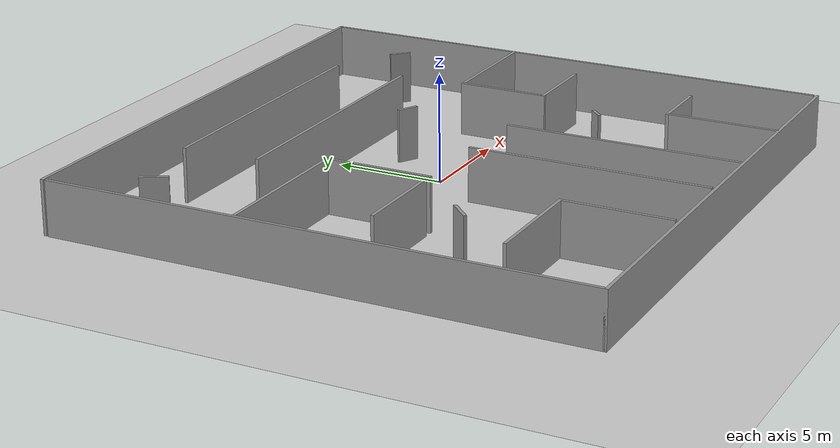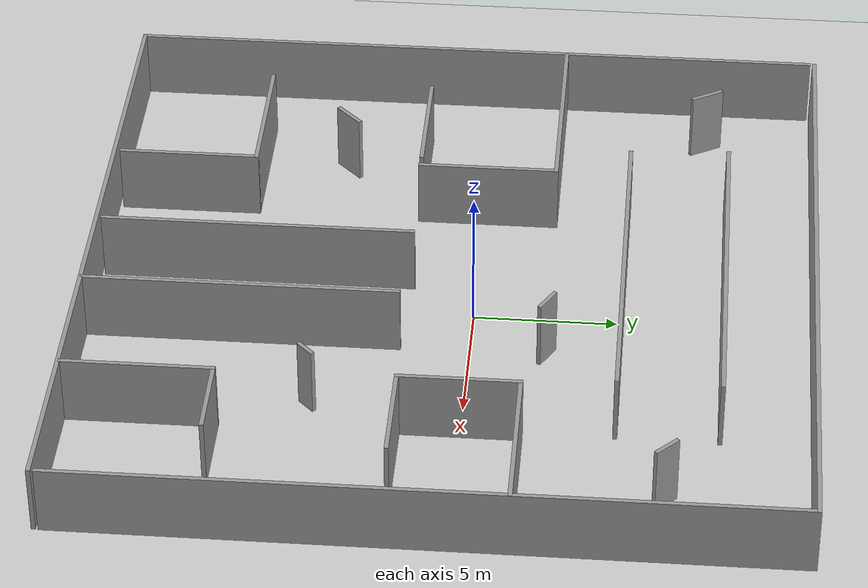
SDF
<sdf version="1.7">
 <world name="default">
  <light name="sun" type="directional">
   <pose>0 0 10 0 -0 0</pose>
   <diffuse>0.8 0.8 0.8 1</diffuse>
   <specular>0.2 0.2 0.2 1</specular>
   <attenuation>
    <range>1000</range>
    <constant>0.9</constant>
    <linear>0.01</linear>
    <quadratic>0.001</quadratic>
   </attenuation>
   <direction>-0.5 0.1 -0.9</direction>
   <spot><inner_angle>0</inner_angle><outer_angle>0</outer_angle><falloff>0</falloff></spot>
  </light>
  <model name="ground_plane">
   <static>1</static>
   <link name="link">
    <collision name="collision">
     <geometry><plane><normal>0 0 1</normal><size>100 100</size></plane></geometry>
     <surface>
      <contact><collide_bitmask>65535</collide_bitmask></contact>
      <friction><ode><mu>100</mu><mu2>50</mu2></ode></friction>
     </surface>
    </collision>
    <visual name="visual">
     <cast_shadows>0</cast_shadows>
     <geometry><plane><normal>0 0 1</normal><size>100 100</size></plane></geometry>
     <material>
      <script><uri>file://media/materials/scripts/gazebo.material</uri><name>Gazebo/Grey</name></script>
     </material>
    </visual>
   </link>
  </model>
  <gravity>0 0 -9.8</gravity>
  <magnetic_field>6e-06 2.3e-05 -4.2e-05</magnetic_field>
  <atmosphere type="adiabatic"/>
  <physics type="ode">
   <max_step_size>0.001</max_step_size>
   <real_time_factor>1</real_time_factor>
   <real_time_update_rate>1000</real_time_update_rate>
  </physics>
  <scene><ambient>0.4 0.4 0.4 1</ambient><background>0.7 0.7 0.7 1</background><shadows>1</shadows></scene>
  <spherical_coordinates>
   <surface_model>EARTH_WGS84</surface_model>
   <latitude_deg>0</latitude_deg>
   <longitude_deg>0</longitude_deg>
   <elevation>0</elevation>
   <heading_deg>0</heading_deg>
  </spherical_coordinates>
  <model name="offcice">
   <pose>-0.466959 -0.799808 0 0 -0 0</pose>
   <link name="Wall_10">
    <collision name="Wall_10_Collision">
     <geometry><box><size>25 0.15 2.5</size></box></geometry>
     <pose>0 0 1.25 0 -0 0</pose>
    </collision>
    <visual name="Wall_10_Visual">
     <pose>0 0 1.25 0 -0 0</pose>
     <geometry><box><size>25 0.15 2.5</size></box></geometry>
     <material>
      <script><uri>file://media/materials/scripts/gazebo.material</uri><name>Gazebo/Grey</name></script>
      <ambient>1 1 1 1</ambient>
     </material>
     <meta><layer>0</layer></meta>
    </visual>
    <pose>-0.011041 -12.5382 0 0 -0 0</pose>
   </link>
   <link name="Wall_13">
    <collision name="Wall_13_Collision">
     <geometry><box><size>13.25 0.15 2.5</size></box></geometry>
     <pose>0 0 1.25 0 -0 0</pose>
    </collision>
    <visual name="Wall_13_Visual">
     <pose>0 0 1.25 0 -0 0</pose>
     <geometry><box><size>13.25 0.15 2.5</size></box></geometry>
     <material>
      <script><uri>file://media/materials/scripts/gazebo.material</uri><name>Gazebo/Grey</name></script>
      <ambient>1 1 1 1</ambient>
     </material>
     <meta><layer>0</layer></meta>
    </visual>
    <pose>-0.017782 9.44155 0 0 -0 0</pose>
   </link>
   <link name="Wall_17">
    <collision name="Wall_17_Collision">
     <geometry><box><size>5.25 0.15 2.5</size></box></geometry>
     <pose>0 0 1.25 0 -0 0</pose>
    </collision>
    <visual name="Wall_17_Visual">
     <pose>0 0 1.25 0 -0 0</pose>
     <geometry><box><size>5.25 0.15 2.5</size></box></geometry>
     <material>
      <script><uri>file://media/materials/scripts/gazebo.material</uri><name>Gazebo/Grey</name></script>
      <ambient>1 1 1 1</ambient>
     </material>
     <meta><layer>0</layer></meta>
    </visual>
    <pose>6.92028 -9.9015 0 0 -0 -1.5708</pose>
   </link>
   <link name="Wall_19">
    <collision name="Wall_19_Collision">
     <geometry><box><size>3 0.15 2.5</size></box></geometry>
     <pose>0 0 1.25 0 -0 0</pose>
    </collision>
    <visual name="Wall_19_Visual">
     <pose>0 0 1.25 0 -0 0</pose>
     <geometry><box><size>3 0.15 2.5</size></box></geometry>
     <material>
      <script><uri>file://media/materials/scripts/gazebo.material</uri><name>Gazebo/Grey</name></script>
      <ambient>1 1 1 1</ambient>
     </material>
     <meta><layer>0</layer></meta>
    </visual>
    <pose>8.34528 -7.3515 0 0 -0 0</pose>
   </link>
   <link name="Wall_21">
    <collision name="Wall_21_Collision">
     <geometry><box><size>4.25 0.15 2.5</size></box></geometry>
     <pose>0 0 1.25 0 -0 0</pose>
    </collision>
    <visual name="Wall_21_Visual">
     <pose>0 0 1.25 0 -0 0</pose>
     <geometry><box><size>5.25 0.15 2.5</size></box></geometry>
     <material>
      <script><uri>file://media/materials/scripts/gazebo.material</uri><name>Gazebo/Grey</name></script>
      <ambient>1 1 1 1</ambient>
     </material>
     <meta><layer>0</layer></meta>
    </visual>
    <pose>-7.59807 -7.40747 0 0 -0 0</pose>
   </link>
   <link name="Wall_22">
    <collision name="Wall_22_Collision">
     <geometry><box><size>5 0.15 2.5</size></box></geometry>
     <pose>0 0 1.25 0 -0 0</pose>
    </collision>
    <visual name="Wall_22_Visual">
     <pose>0 0 1.25 0 -0 0</pose>
     <geometry><box><size>5 0.15 2.5</size></box></geometry>
     <material>
      <script><uri>file://media/materials/scripts/gazebo.material</uri><name>Gazebo/Grey</name></script>
      <ambient>1 1 1 1</ambient>
     </material>
     <meta><layer>0</layer></meta>
    </visual>
    <pose>-5.04807 -9.83247 0 0 -0 -1.5708</pose>
   </link>
   <link name="Wall_24">
    <collision name="Wall_24_Collision">
     <geometry><box><size>13 0.15 2.5</size></box></geometry>
     <pose>0 0 1.25 0 -0 0</pose>
    </collision>
    <visual name="Wall_24_Visual">
     <pose>0 0 1.25 0 -0 0</pose>
     <geometry><box><size>13 0.15 2.5</size></box></geometry>
     <material>
      <script><uri>file://media/materials/scripts/gazebo.material</uri><name>Gazebo/Grey</name></script>
      <ambient>1 1 1 1</ambient>
     </material>
     <meta><layer>0</layer></meta>
    </visual>
    <pose>0.078333 5.94792 0 0 -0 0</pose>
   </link>
   <link name="Wall_26">
    <collision name="Wall_26_Collision">
     <geometry><box><size>7.5 0.15 2.5</size></box></geometry>
     <pose>0 0 1.25 0 -0 0</pose>
    </collision>
    <visual name="Wall_26_Visual">
     <pose>0 0 1.25 0 -0 0</pose>
     <geometry><box><size>7.5 0.15 2.5</size></box></geometry>
     <material>
      <script><uri>file://media/materials/scripts/gazebo.material</uri><name>Gazebo/Grey</name></script>
      <ambient>1 1 1 1</ambient>
     </material>
     <meta><layer>0</layer></meta>
    </visual>
    <pose>-8.68602 3.33876 0 0 -0 0</pose>
   </link>
   <link name="Wall_27">
    <collision name="Wall_27_Collision">
     <geometry><box><size>5 0.15 2.5</size></box></geometry>
     <pose>0 0 1.25 0 -0 0</pose>
    </collision>
    <visual name="Wall_27_Visual">
     <pose>0 0 1.25 0 -0 0</pose>
     <geometry><box><size>5 0.15 2.5</size></box></geometry>
     <material>
      <script><uri>file://media/materials/scripts/gazebo.material</uri><name>Gazebo/Grey</name></script>
      <ambient>1 1 1 1</ambient>
     </material>
     <meta><layer>0</layer></meta>
    </visual>
    <pose>-5.01102 0.913757 0 0 -0 -1.5708</pose>
   </link>
   <link name="Wall_28">
    <collision name="Wall_28_Collision">
     <geometry><box><size>4.5 0.15 2.5</size></box></geometry>
     <pose>0 0 1.25 0 -0 0</pose>
    </collision>
    <visual name="Wall_28_Visual">
     <pose>0 0 1.25 0 -0 0</pose>
     <geometry><box><size>4.5 0.15 2.5</size></box></geometry>
     <material>
      <script><uri>file://media/materials/scripts/gazebo.material</uri><name>Gazebo/Grey</name></script>
      <ambient>1 1 1 1</ambient>
     </material>
     <meta><layer>0</layer></meta>
    </visual>
    <pose>-7.68602 -1.51124 0 0 -0 3.14159</pose>
   </link>
   <link name="Wall_30">
    <collision name="Wall_30_Collision">
     <geometry><box><size>5.75 0.15 2.5</size></box></geometry>
     <pose>0 0 1.25 0 -0 0</pose>
    </collision>
    <visual name="Wall_30_Visual">
     <pose>0 0 1.25 0 -0 0</pose>
     <geometry><box><size>5.75 0.15 2.5</size></box></geometry>
     <material>
      <script><uri>file://media/materials/scripts/gazebo.material</uri><name>Gazebo/Grey</name></script>
      <ambient>1 1 1 1</ambient>
     </material>
     <meta><layer>0</layer></meta>
    </visual>
    <pose>9.63184 2.80808 0 0 -0 0</pose>
   </link>
   <link name="Wall_32">
    <collision name="Wall_32_Collision">
     <geometry><box><size>4.25 0.15 2.5</size></box></geometry>
     <pose>0 0 1.25 0 -0 0</pose>
    </collision>
    <visual name="Wall_32_Visual">
     <pose>0 0 1.25 0 -0 0</pose>
     <geometry><box><size>4.25 0.15 2.5</size></box></geometry>
     <material>
      <script><uri>file://media/materials/scripts/gazebo.material</uri><name>Gazebo/Grey</name></script>
      <ambient>1 1 1 1</ambient>
     </material>
     <meta><layer>0</layer></meta>
    </visual>
    <pose>6.83183 0.758079 0 0 -0 -1.5708</pose>
   </link>
   <link name="Wall_33">
    <collision name="Wall_33_Collision">
     <geometry><box><size>3.75 0.15 2.5</size></box></geometry>
     <pose>0 0 1.25 0 -0 0</pose>
    </collision>
    <visual name="Wall_33_Visual">
     <pose>0 0 1.25 0 -0 0</pose>
     <geometry><box><size>3.75 0.15 2.5</size></box></geometry>
     <material>
      <script><uri>file://media/materials/scripts/gazebo.material</uri><name>Gazebo/Grey</name></script>
      <ambient>1 1 1 1</ambient>
     </material>
     <meta><layer>0</layer></meta>
    </visual>
    <pose>8.63184 -1.29192 0 0 -0 0</pose>
   </link>
   <link name="Wall_35">
    <collision name="Wall_35_Collision">
     <geometry><box><size>11 0.15 2.5</size></box></geometry>
     <pose>0 0 1.25 0 -0 0</pose>
    </collision>
    <visual name="Wall_35_Visual">
     <pose>0 0 1.25 0 -0 0</pose>
     <geometry><box><size>11 0.15 2.5</size></box></geometry>
     <material>
      <script><uri>file://media/materials/scripts/gazebo.material</uri><name>Gazebo/Grey</name></script>
      <ambient>1 1 1 1</ambient>
     </material>
     <meta><layer>0</layer></meta>
    </visual>
    <pose>-1.03989 -6.86952 0 0 -0 -1.5708</pose>
   </link>
   <link name="Wall_38">
    <collision name="Wall_38_Collision">
     <geometry><box><size>11 0.15 2.5</size></box></geometry>
     <pose>0 0 1.25 0 -0 0</pose>
    </collision>
    <visual name="Wall_38_Visual">
     <pose>0 0 1.25 0 -0 0</pose>
     <geometry><box><size>11 0.15 2.5</size></box></geometry>
     <material>
      <script><uri>file://media/materials/scripts/gazebo.material</uri><name>Gazebo/Grey</name></script>
      <ambient>1 1 1 1</ambient>
     </material>
     <meta><layer>0</layer></meta>
    </visual>
    <pose>2.3653 -7.0753 0 0 -0 -1.5708</pose>
   </link>
   <link name="Wall_4">
    <collision name="Wall_4_Collision">
     <geometry><box><size>25 0.15 2.5</size></box></geometry>
     <pose>0 0 1.25 0 -0 0</pose>
    </collision>
    <visual name="Wall_4_Visual">
     <pose>0 0 1.25 0 -0 0</pose>
     <geometry><box><size>25 0.15 2.5</size></box></geometry>
     <material>
      <script><uri>file://media/materials/scripts/gazebo.material</uri><name>Gazebo/Grey</name></script>
      <ambient>1 1 1 1</ambient>
     </material>
     <meta><layer>0</layer></meta>
    </visual>
    <pose>0.011041 12.538 0 0 -0 -1.6e-05</pose>
   </link>
   <link name="Wall_40">
    <collision name="Wall_40_Collision">
     <geometry><box><size>1.25 0.15 2.5</size></box></geometry>
     <pose>0 0 1.25 0 -0 0</pose>
    </collision>
    <visual name="Wall_40_Visual">
     <pose>0 0 1.25 0 -0 0</pose>
     <geometry><box><size>1.25 0.15 2.5</size></box></geometry>
     <material>
      <script><uri>file://media/materials/scripts/gazebo.material</uri><name>Gazebo/Grey</name></script>
      <ambient>1 1 1 1</ambient>
     </material>
     <meta><layer>0</layer></meta>
    </visual>
    <pose>-7.88538 -4.34697 0 0 -0 -2.35619</pose>
   </link>
   <link name="Wall_42">
    <collision name="Wall_42_Collision">
     <geometry><box><size>1 0.15 2.5</size></box></geometry>
     <pose>0 0 1.25 0 -0 0</pose>
    </collision>
    <visual name="Wall_42_Visual">
     <pose>0 0 1.25 0 -0 0</pose>
     <geometry><box><size>1 0.15 2.5</size></box></geometry>
     <material>
      <script><uri>file://media/materials/scripts/gazebo.material</uri><name>Gazebo/Grey</name></script>
      <ambient>1 1 1 1</ambient>
     </material>
     <meta><layer>0</layer></meta>
    </visual>
    <pose>9.6973 7.68167 0 0 -0 -0.785398</pose>
   </link>
   <link name="Wall_44">
    <collision name="Wall_44_Collision">
     <geometry><box><size>1.25 0.15 2.5</size></box></geometry>
     <pose>0 0 1.25 0 -0 0</pose>
    </collision>
    <visual name="Wall_44_Visual">
     <pose>0 0 1.25 0 -0 0</pose>
     <geometry><box><size>1.25 0.15 2.5</size></box></geometry>
     <material>
      <script><uri>file://media/materials/scripts/gazebo.material</uri><name>Gazebo/Grey</name></script>
      <ambient>1 1 1 1</ambient>
     </material>
     <meta><layer>0</layer></meta>
    </visual>
    <pose>-10.1402 8.61145 0 0 -0 -1.0472</pose>
   </link>
   <link name="Wall_46">
    <collision name="Wall_46_Collision">
     <geometry><box><size>1 0.15 2.5</size></box></geometry>
     <pose>0 0 1.25 0 -0 0</pose>
    </collision>
    <visual name="Wall_46_Visual">
     <pose>0 0 1.25 0 -0 0</pose>
     <geometry><box><size>1 0.15 2.5</size></box></geometry>
     <material>
      <script><uri>file://media/materials/scripts/gazebo.material</uri><name>Gazebo/Grey</name></script>
      <ambient>1 1 1 1</ambient>
     </material>
     <meta><layer>0</layer></meta>
    </visual>
    <pose>2.4238 3.43582 0 0 -0 -0.523599</pose>
   </link>
   <link name="Wall_48">
    <collision name="Wall_48_Collision">
     <geometry><box><size>0.75 0.15 2.5</size></box></geometry>
     <pose>0 0 1.25 0 -0 0</pose>
    </collision>
    <visual name="Wall_48_Visual">
     <pose>0 0 1.25 0 -0 0</pose>
     <geometry><box><size>0.75 0.15 2.5</size></box></geometry>
     <material>
      <script><uri>file://media/materials/scripts/gazebo.material</uri><name>Gazebo/Grey</name></script>
      <ambient>1 1 1 1</ambient>
     </material>
     <meta><layer>0</layer></meta>
    </visual>
    <pose>5.64679 -4.43553 0 0 -0 -2.35619</pose>
   </link>
   <link name="Wall_6">
    <collision name="Wall_6_Collision">
     <geometry><box><size>25 0.15 2.5</size></box></geometry>
     <pose>0 0 1.25 0 -0 0</pose>
    </collision>
    <visual name="Wall_6_Visual">
     <pose>0 0 1.25 0 -0 0</pose>
     <geometry><box><size>25 0.15 2.5</size></box></geometry>
     <material>
      <script><uri>file://media/materials/scripts/gazebo.material</uri><name>Gazebo/Grey</name></script>
      <ambient>1 1 1 1</ambient>
     </material>
     <meta><layer>0</layer></meta>
    </visual>
    <pose>-12.436 -0.113192 0 0 -0 -1.5708</pose>
   </link>
   <link name="Wall_8">
    <collision name="Wall_8_Collision">
     <geometry><box><size>25 0.15 2.5</size></box></geometry>
     <pose>0 0 1.25 0 -0 0</pose>
    </collision>
    <visual name="Wall_8_Visual">
     <pose>0 0 1.25 0 -0 0</pose>
     <geometry><box><size>25 0.15 2.5</size></box></geometry>
     <material>
      <script><uri>file://media/materials/scripts/gazebo.material</uri><name>Gazebo/Grey</name></script>
      <ambient>1 1 1 1</ambient>
     </material>
     <meta><layer>0</layer></meta>
    </visual>
    <pose>12.436 0.112808 0 0 -0 -1.5708</pose>
   </link>
   <static>1</static>
  </model>
 </world>
</sdf>
